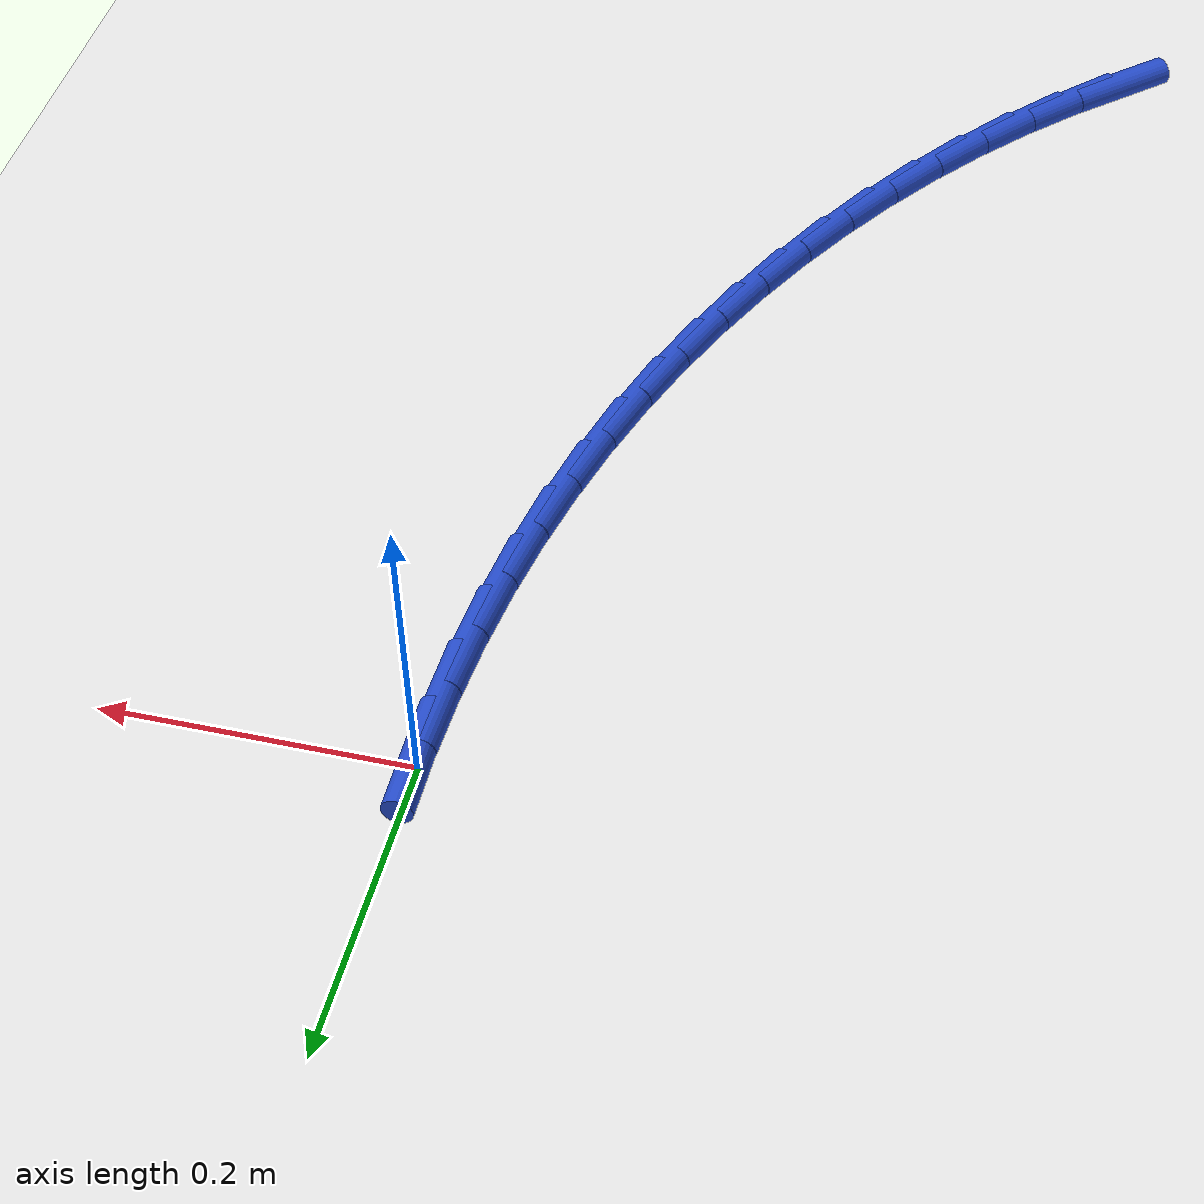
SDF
<sdf version="1.6">
 <world name="default">
  <model name="ground_plane">
   <static>1</static>
   <link name="link">
    <collision name="collision">
     <geometry><plane><normal>0 0 1</normal><size>100 100</size></plane></geometry>
     <surface><friction><ode><mu>100</mu><mu2>50</mu2></ode></friction></surface>
    </collision>
    <visual name="visual">
     <cast_shadows>0</cast_shadows>
     <geometry><plane><normal>0 0 1</normal><size>100 100</size></plane></geometry>
     <material>
      <script><uri>file://media/materials/scripts/gazebo.material</uri><name>Gazebo/WhiteGlow</name></script>
     </material>
    </visual>
   </link>
  </model>
  <model name="line">
   <link name="link_0">
    <pose>2.949029909160572e-17 2.7755575615628914e-17 0.01 0 1.57 -1.559873761701563</pose>
    <collision name="collision">
     <geometry><cylinder><radius>0.01</radius><length>0.08</length></cylinder></geometry>
    </collision>
    <visual name="visual">
     <material>
      <script><name>Gazebo/Blue</name><uri>file://media/materials/scripts/gazebo.material</uri></script>
     </material>
     <geometry><cylinder><radius>0.01</radius><length>0.08</length></cylinder></geometry>
    </visual>
   </link>
   <link name="link_132">
    <pose>-0.32985658873337653 -0.7422928632971736 0.01 0 1.57 0.7305539549413788</pose>
    <collision name="collision">
     <geometry><cylinder><radius>0.01</radius><length>0.08</length></cylinder></geometry>
    </collision>
    <visual name="visual">
     <material>
      <script><name>Gazebo/Blue</name><uri>file://media/materials/scripts/gazebo.material</uri></script>
     </material>
     <geometry><cylinder><radius>0.01</radius><length>0.08</length></cylinder></geometry>
    </visual>
   </link>
   <link name="link_133">
    <pose>-0.2959202390521346 -0.7118887572239719 0.01 0 1.57 0.7889724578632983</pose>
    <collision name="collision">
     <geometry><cylinder><radius>0.01</radius><length>0.08</length></cylinder></geometry>
    </collision>
    <visual name="visual">
     <material>
      <script><name>Gazebo/Blue</name><uri>file://media/materials/scripts/gazebo.material</uri></script>
     </material>
     <geometry><cylinder><radius>0.01</radius><length>0.08</length></cylinder></geometry>
    </visual>
   </link>
   <link name="link_134">
    <pose>-0.26356837048995213 -0.6793047878672723 0.01 0 1.57 0.8444983389997115</pose>
    <collision name="collision">
     <geometry><cylinder><radius>0.01</radius><length>0.08</length></cylinder></geometry>
    </collision>
    <visual name="visual">
     <material>
      <script><name>Gazebo/Blue</name><uri>file://media/materials/scripts/gazebo.material</uri></script>
     </material>
     <geometry><cylinder><radius>0.01</radius><length>0.08</length></cylinder></geometry>
    </visual>
   </link>
   <link name="link_135">
    <pose>-0.2328570683330716 -0.6447306034790691 0.01 0 1.57 0.8974844071107024</pose>
    <collision name="collision">
     <geometry><cylinder><radius>0.01</radius><length>0.08</length></cylinder></geometry>
    </collision>
    <visual name="visual">
     <material>
      <script><name>Gazebo/Blue</name><uri>file://media/materials/scripts/gazebo.material</uri></script>
     </material>
     <geometry><cylinder><radius>0.01</radius><length>0.08</length></cylinder></geometry>
    </visual>
   </link>
   <link name="link_136">
    <pose>-0.2038424178677341 -0.6083558523113552 0.01 0 1.57 0.9482966578606233</pose>
    <collision name="collision">
     <geometry><cylinder><radius>0.01</radius><length>0.08</length></cylinder></geometry>
    </collision>
    <visual name="visual">
     <material>
      <script><name>Gazebo/Blue</name><uri>file://media/materials/scripts/gazebo.material</uri></script>
     </material>
     <geometry><cylinder><radius>0.01</radius><length>0.08</length></cylinder></geometry>
    </visual>
   </link>
   <link name="link_137">
    <pose>-0.17658050438018208 -0.5703701826161256 0.01 0 1.57 0.9973060950956993</pose>
    <collision name="collision">
     <geometry><cylinder><radius>0.01</radius><length>0.08</length></cylinder></geometry>
    </collision>
    <visual name="visual">
     <material>
      <script><name>Gazebo/Blue</name><uri>file://media/materials/scripts/gazebo.material</uri></script>
     </material>
     <geometry><cylinder><radius>0.01</radius><length>0.08</length></cylinder></geometry>
    </visual>
   </link>
   <link name="link_138">
    <pose>-0.151127413156658 -0.5309632426453744 0.01 0 1.57 1.0448845175668844</pose>
    <collision name="collision">
     <geometry><cylinder><radius>0.01</radius><length>0.08</length></cylinder></geometry>
    </collision>
    <visual name="visual">
     <material>
      <script><name>Gazebo/Blue</name><uri>file://media/materials/scripts/gazebo.material</uri></script>
     </material>
     <geometry><cylinder><radius>0.01</radius><length>0.08</length></cylinder></geometry>
    </visual>
   </link>
   <link name="link_139">
    <pose>-0.127539229483403 -0.49032468065109464 0.01 0 1.57 1.0914033441578248</pose>
    <collision name="collision">
     <geometry><cylinder><radius>0.01</radius><length>0.08</length></cylinder></geometry>
    </collision>
    <visual name="visual">
     <material>
      <script><name>Gazebo/Blue</name><uri>file://media/materials/scripts/gazebo.material</uri></script>
     </material>
     <geometry><cylinder><radius>0.01</radius><length>0.08</length></cylinder></geometry>
    </visual>
   </link>
   <link name="link_140">
    <pose>-0.10587203864665978 -0.4486441448852816 0.01 0 1.57 1.137234722768069</pose>
    <collision name="collision">
     <geometry><cylinder><radius>0.01</radius><length>0.08</length></cylinder></geometry>
    </collision>
    <visual name="visual">
     <material>
      <script><name>Gazebo/Blue</name><uri>file://media/materials/scripts/gazebo.material</uri></script>
     </material>
     <geometry><cylinder><radius>0.01</radius><length>0.08</length></cylinder></geometry>
    </visual>
   </link>
   <link name="link_141">
    <pose>-0.08618192590223323 -0.40611128353116016 0.01 0 1.57 1.1827388055755632</pose>
    <collision name="collision">
     <geometry><cylinder><radius>0.01</radius><length>0.08</length></cylinder></geometry>
    </collision>
    <visual name="visual">
     <material>
      <script><name>Gazebo/Blue</name><uri>file://media/materials/scripts/gazebo.material</uri></script>
     </material>
     <geometry><cylinder><radius>0.01</radius><length>0.08</length></cylinder></geometry>
    </visual>
   </link>
   <link name="link_142">
    <pose>-0.06851472098584263 -0.36289257365944394 0.01 0 1.57 1.228069772987686</pose>
    <collision name="collision">
     <geometry><cylinder><radius>0.01</radius><length>0.08</length></cylinder></geometry>
    </collision>
    <visual name="visual">
     <material>
      <script><name>Gazebo/Blue</name><uri>file://media/materials/scripts/gazebo.material</uri></script>
     </material>
     <geometry><cylinder><radius>0.01</radius><length>0.08</length></cylinder></geometry>
    </visual>
   </link>
   <link name="link_143">
    <pose>-0.05287698677313725 -0.3190657735996157 0.01 0 1.57 1.2731989140148707</pose>
    <collision name="collision">
     <geometry><cylinder><radius>0.01</radius><length>0.08</length></cylinder></geometry>
    </collision>
    <visual name="visual">
     <material>
      <script><name>Gazebo/Blue</name><uri>file://media/materials/scripts/gazebo.material</uri></script>
     </material>
     <geometry><cylinder><radius>0.01</radius><length>0.08</length></cylinder></geometry>
    </visual>
   </link>
   <link name="link_144">
    <pose>-0.03926588960950498 -0.27468741135270197 0.01 0 1.57 1.3180944979311813</pose>
    <collision name="collision">
     <geometry><cylinder><radius>0.01</radius><length>0.08</length></cylinder></geometry>
    </collision>
    <visual name="visual">
     <material>
      <script><name>Gazebo/Blue</name><uri>file://media/materials/scripts/gazebo.material</uri></script>
     </material>
     <geometry><cylinder><radius>0.01</radius><length>0.08</length></cylinder></geometry>
    </visual>
   </link>
   <link name="link_145">
    <pose>-0.0276785958403346 -0.2298140149197321 0.01 0 1.57 1.3627300926800827</pose>
    <collision name="collision">
     <geometry><cylinder><radius>0.01</radius><length>0.08</length></cylinder></geometry>
    </collision>
    <visual name="visual">
     <material>
      <script><name>Gazebo/Blue</name><uri>file://media/materials/scripts/gazebo.material</uri></script>
     </material>
     <geometry><cylinder><radius>0.01</radius><length>0.08</length></cylinder></geometry>
    </visual>
   </link>
   <link name="link_146">
    <pose>-0.018112271811014085 -0.18450211230173233 0.01 0 1.57 1.4070844132260565</pose>
    <collision name="collision">
     <geometry><cylinder><radius>0.01</radius><length>0.08</length></cylinder></geometry>
    </collision>
    <visual name="visual">
     <material>
      <script><name>Gazebo/Blue</name><uri>file://media/materials/scripts/gazebo.material</uri></script>
     </material>
     <geometry><cylinder><radius>0.01</radius><length>0.08</length></cylinder></geometry>
    </visual>
   </link>
   <link name="link_147">
    <pose>-0.01056408386693201 -0.13880823149973123 0.01 0 1.57 1.4511410714419202</pose>
    <collision name="collision">
     <geometry><cylinder><radius>0.01</radius><length>0.08</length></cylinder></geometry>
    </collision>
    <visual name="visual">
     <material>
      <script><name>Gazebo/Blue</name><uri>file://media/materials/scripts/gazebo.material</uri></script>
     </material>
     <geometry><cylinder><radius>0.01</radius><length>0.08</length></cylinder></geometry>
    </visual>
   </link>
   <link name="link_148">
    <pose>-0.005031198353476796 -0.09278890051475741 0.01 0 1.57 1.4948882441230777</pose>
    <collision name="collision">
     <geometry><cylinder><radius>0.01</radius><length>0.08</length></cylinder></geometry>
    </collision>
    <visual name="visual">
     <material>
      <script><name>Gazebo/Blue</name><uri>file://media/materials/scripts/gazebo.material</uri></script>
     </material>
     <geometry><cylinder><radius>0.01</radius><length>0.08</length></cylinder></geometry>
    </visual>
   </link>
   <link name="link_149">
    <pose>-0.0015107816160366307 -0.04650064734783721 0.01 0 1.57 1.5383182762293868</pose>
    <collision name="collision">
     <geometry><cylinder><radius>0.01</radius><length>0.08</length></cylinder></geometry>
    </collision>
    <visual name="visual">
     <material>
      <script><name>Gazebo/Blue</name><uri>file://media/materials/scripts/gazebo.material</uri></script>
     </material>
     <geometry><cylinder><radius>0.01</radius><length>0.08</length></cylinder></geometry>
    </visual>
   </link>
  </model>
 </world>
</sdf>
